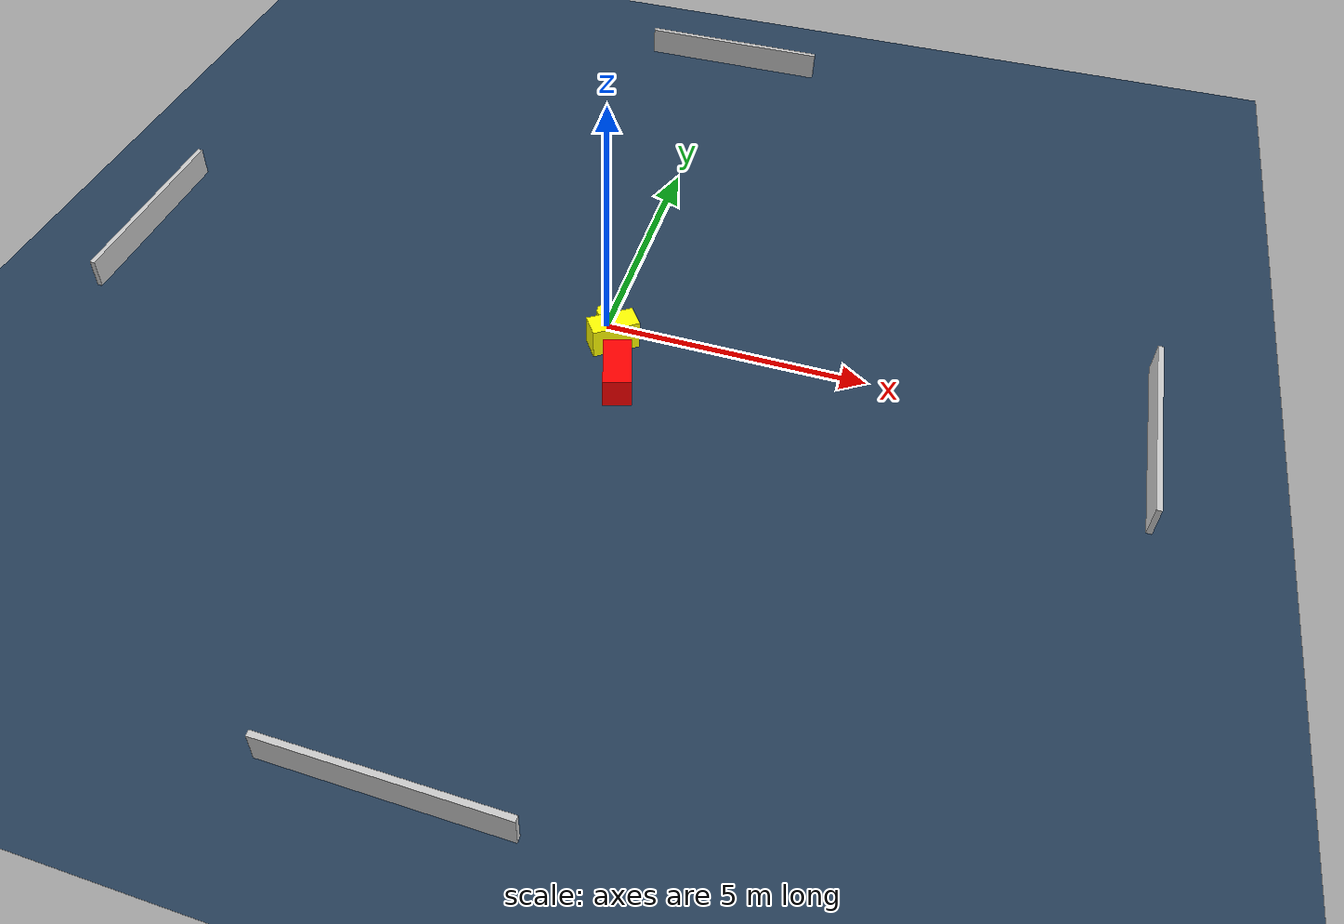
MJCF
<?xml version="1.0" ?>
<mujoco model="generated_environment">
  <option timestep="0.01" integrator="RK4" cone="elliptic"/>
  <default>
    <geom density="1"/>
  </default>
  <asset>
    <texture builtin="gradient" height="3072" name="skybox" rgb1="0.3 0.5 0.7" rgb2="0 0 0" type="skybox" width="512"/>
    <texture builtin="checker" height="300" name="groundplane" rgb1="0.2 0.3 0.4" rgb2="0.1 0.2 0.3" type="2d" width="300"/>
    <material name="groundplane" reflectance="0.2" texrepeat="5 5" texture="groundplane"/>
  </asset>
  <worldbody>
    <light dir="0 0 -1" directional="true" pos="0 0 1.5"/>
    <geom condim="3" friction="0.5 0.005 0.001" material="groundplane" name="floor" pos="0 0 0" size="0 0 0.05" type="plane"/>
    <body name="walls">
      <geom name="wall_1" condim="4" pos="-10.0 0.0 0.3" rgba="0.800000011920929 0.800000011920929 0.800000011920929 1.0" size="0.05 2.0 0.3" type="box"/>
      <geom name="wall_2" condim="4" pos="10.0 0.0 0.3" rgba="0.800000011920929 0.800000011920929 0.800000011920929 1.0" size="0.05 2.0 0.3" type="box"/>
      <geom name="wall_3" condim="4" pos="0.0 -10.0 0.3" rgba="0.800000011920929 0.800000011920929 0.800000011920929 1.0" size="2.0 0.05 0.3" type="box"/>
      <geom name="wall_4" condim="4" pos="0.0 10.0 0.3" rgba="0.800000011920929 0.800000011920929 0.800000011920929 1.0" size="2.0 0.05 0.3" type="box"/>
    </body>
    <body name="robot">
      <joint name="joint_x" type="slide" pos="0 0 0" axis="1 0 0"/>
      <joint name="joint_y" type="slide" pos="0 0 0" axis="0 1 0"/>
      <geom name="robot" type="cylinder" pos="0.0 0.0 0.2" size="0.2 0.2 0.0" mass="5.0" friction="1.0 0.005 0.0001" condim="4" rgba="1.0 1.0 0.0 1.0"/>
    </body>
    <body name="obstacle_1_movable">
      <geom name="obstacle_1_movable" condim="4" pos="0.25566789992415606 -0.4391203420075014 0.3" euler="0 0 125.46740082276196" friction="0.0 0.005 0.001" rgba="1.0 1.0 0.0 1.0" size="0.2233695596223527 0.4565690244042168 0.3" type="box" mass="0.1"/>
      <joint type="free"/>
    </body>
    <body name="obstacle_2_static">
      <geom name="obstacle_2_static" condim="4" pos="0.6548476228573386 -1.423076985642404 0.3" euler="0 0 287.23103309430803" friction="0.0 0.005 0.001" rgba="1.0 0.0 0.0 1.0" size="0.5513767425396185 0.2624196275876919 0.3" type="box"/>
    </body>
  </worldbody>
  <actuator>
    <motor name="actuator_x" joint="joint_x" gear="1" ctrlrange="-1 1"/>
    <motor name="actuator_y" joint="joint_y" gear="1" ctrlrange="-1 1"/>
  </actuator>
</mujoco>
